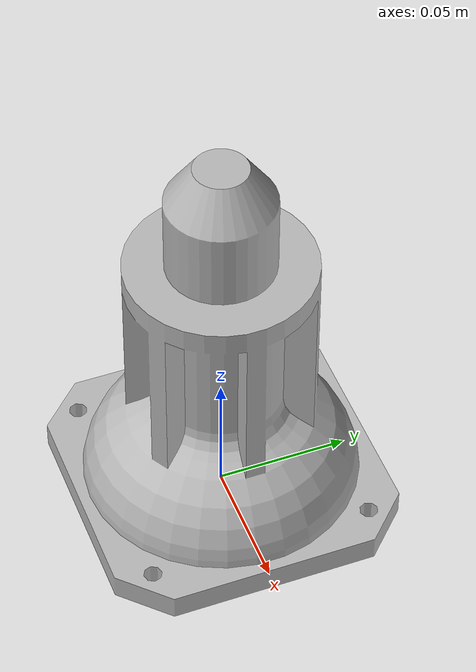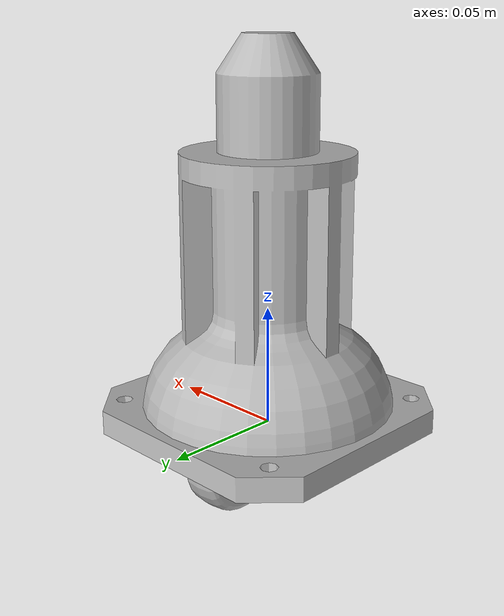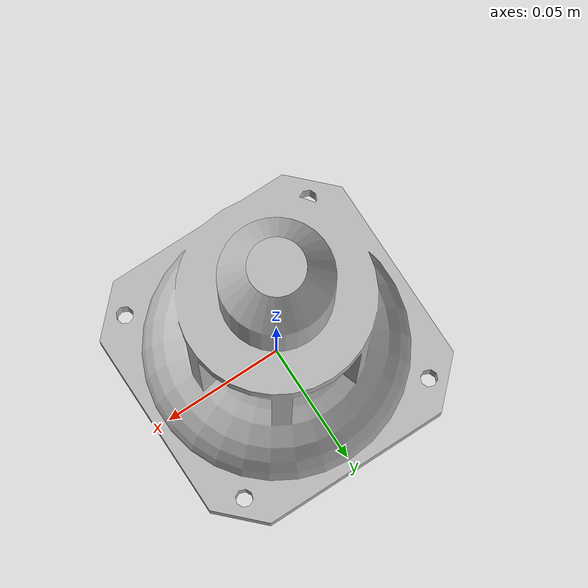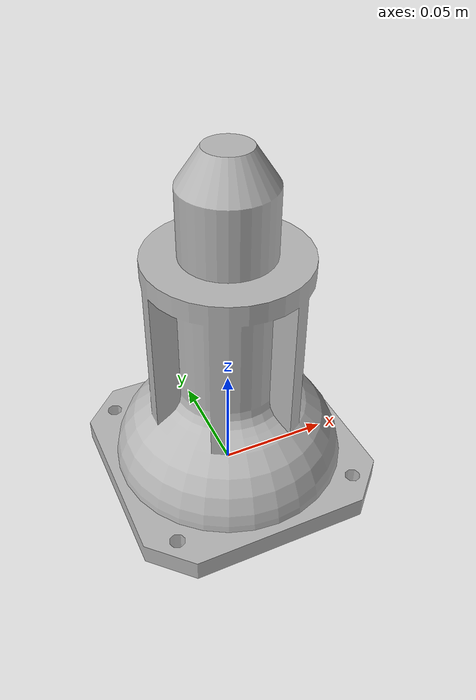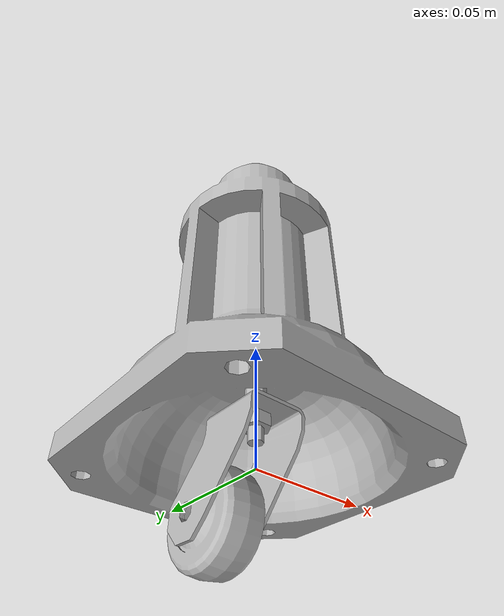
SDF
<?xml version="1.0" ?>
<sdf version="1.10">
  <model name="caster_suspension">

  <!-- Caster suspension LINKS -->

  <link name="Suspension_cup">
    <inertial>
      <inertia>
        <ixx>0.00180</ixx>
        <ixy>-0.00000</ixy>
        <ixz>0.00000</ixz>
        <iyy>0.00180</iyy>
        <iyz>-0.00000</iyz>
        <izz>0.00091</izz>
      </inertia>
      <pose>0 0 0.051553 0 0 0</pose>
      <mass>0.80000</mass>
    </inertial>

    <visual name="visual">
      <pose>0 0 0.114501 0 0 0</pose>
      <geometry>
        <mesh>
          <uri>file://models/amr100/suspension_model/meshes/suspension_cup.obj</uri>
          <scale>1 1 1</scale>
        </mesh>
      </geometry>
    </visual>

    <collision name="collision">
      <pose>0 0 0.114501 0 0 0</pose>
      <geometry>
        <mesh>
          <uri>file://models/amr100/suspension_model/meshes/suspension_cup.obj</uri>
          <scale>1 1 1</scale>
        </mesh>
      </geometry>
      <surface>
        <contact/>
      </surface>
    </collision>
  </link>

  <link name="Caster_axis">
    <inertial>
      <inertia>
        <ixx>0.00008</ixx>
        <ixy>-0.00000</ixy>
        <ixz>0.00000</ixz>
        <iyy>0.00008</iyy>
        <iyz>0.00000</iyz>
        <izz>0.000001</izz>
      </inertia>
      <pose>0.000008 0.000014 0.05731 0 3.14159 0</pose>
      <mass>0.10000</mass>
    </inertial>

    <visual name="visual">
      <pose>0 0 0.019993 0 0 0</pose>
      <geometry>
        <mesh>
          <uri>file://models/amr100/suspension_model/meshes/caster_axis.obj</uri>
          <scale>1 1 1</scale>
        </mesh>
      </geometry>
    </visual>

    <collision name="collision">
      <pose>0 0 0.019993 0 0 0</pose>
      <geometry>
        <mesh>
          <uri>file://models/amr100/suspension_model/meshes/caster_axis.obj</uri>
          <scale>1 1 1</scale>
        </mesh>
      </geometry>
      <surface>
        <contact/>
      </surface>
    </collision>
  </link>

  <link name="Caster_bar">
    <inertial>
      <inertia>
        <ixx>0.00001</ixx>
        <ixy>0.00000</ixy>
        <ixz>-0.00000</ixz>
        <iyy>0.00001</iyy>
        <iyz>0.00000</iyz>
        <izz>0.00001</izz>
      </inertia>
      <pose>0 0.007629 0.005663 0 0 0.41888</pose>
      <mass>0.05000</mass>
    </inertial>

    <visual name="visual">
      <pose>0 0 0.019993 0 0 0</pose>
      <geometry>
        <mesh>
          <uri>file://models/amr100/suspension_model/meshes/caster_bar.obj</uri>
          <scale>1 1 1</scale>
        </mesh>
      </geometry>
    </visual>

    <collision name="collision">
      <pose>0 0 0.019993 0 0 0</pose>
      <geometry>
        <mesh>
          <uri>file://models/amr100/suspension_model/meshes/caster_bar.obj</uri>
          <scale>1 1 1</scale>
        </mesh>
      </geometry>
      <surface>
        <contact/>
      </surface>
    </collision>
  </link>

  <link name="Caster_wheel">
    <inertial>
      <inertia>
        <ixx>0.00001</ixx>
        <ixy>-0.00000</ixy>
        <ixz>0.00000</ixz>
        <iyy>0.00001</iyy>
        <iyz>-0.00000</iyz>
        <izz>0.00001</izz>
      </inertia>
      <pose>0 0.02159 -0.011001 0 0 0</pose>
      <mass>0.05000</mass>
    </inertial>

    <visual name="visual">
      <pose>0 0.02159 -0.011001 0 1.5708 0</pose>
      <geometry>
        <mesh>
          <uri>file://models/amr100/suspension_model/meshes/caster_wheel.obj</uri>
          <scale>1 1 1</scale>
        </mesh>
      </geometry>
    </visual>

    <collision name="collision">
      <pose>0 0.02159 -0.011001 0 1.5708 0</pose>
      <geometry>
        <cylinder>
          <radius>0.01900</radius>
          <length>0.02107</length>
        </cylinder>
      </geometry>
      <surface>
        <contact/>
      </surface>
    </collision>
  </link>

  <!-- Caster suspension JOINTS -->

  <joint name="Caster_axis_joint" type="prismatic">
    <pose>0 0 0.114501 0 3.14159 0</pose>
    <parent>Suspension_cup</parent>
    <child>Caster_axis</child>
    <axis>
      <dynamics>
        <damping>240.00000</damping>
        <spring_stiffness>6070.00000</spring_stiffness>
      </dynamics>
      <limit>
        <lower>-0.02600</lower>
        <upper>0.00900</upper>
        <effort>210.00000</effort>
        <velocity>0.5</velocity>
      </limit>
      <xyz>0 0 -1</xyz>
    </axis>
    <axis2>
      <dynamics>
        <damping>240.00000</damping>
        <spring_stiffness>6070.00000</spring_stiffness>
      </dynamics>
    </axis2>
  </joint>

  <joint name="Caster_bar_joint" type="revolute">
    <pose>0 0 0.019993 0 0 0</pose>
    <parent>Caster_axis</parent>
    <child>Caster_bar</child>
    <axis>
      <xyz>0 0 1</xyz>
      <limit>
        <lower>-1.79769e+308</lower>
        <upper>1.79769e+308</upper>
      </limit>
    </axis>
    <axis2/>
  </joint>

  <joint name="Caster_wheel_joint" type="revolute">
    <pose>0 0.02159 -0.011001 0 1.5708 0</pose>
    <parent>Caster_bar</parent>
    <child>Caster_wheel</child>
    <axis>
      <xyz>0 0 1</xyz>
      <limit>
        <lower>-1.79769e+308</lower>
        <upper>1.79769e+308</upper>
      </limit>
    </axis>
    <axis2/>
  </joint>

  </model>
</sdf>
